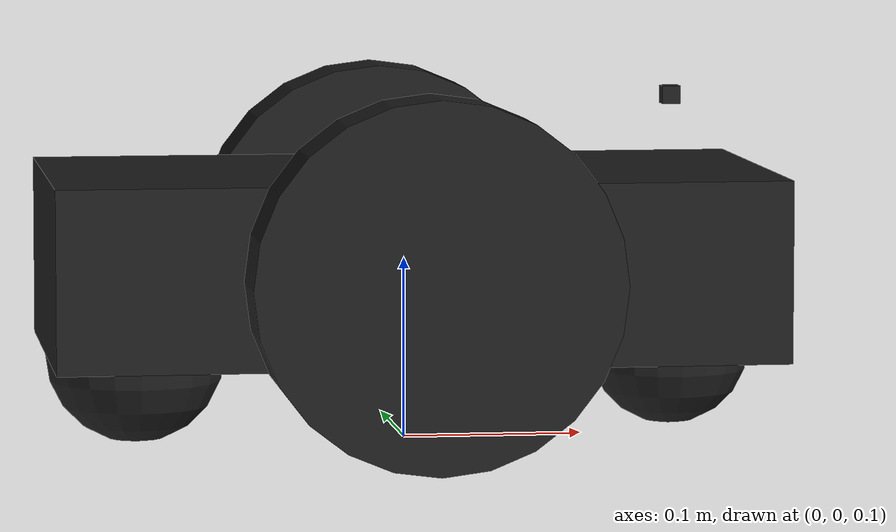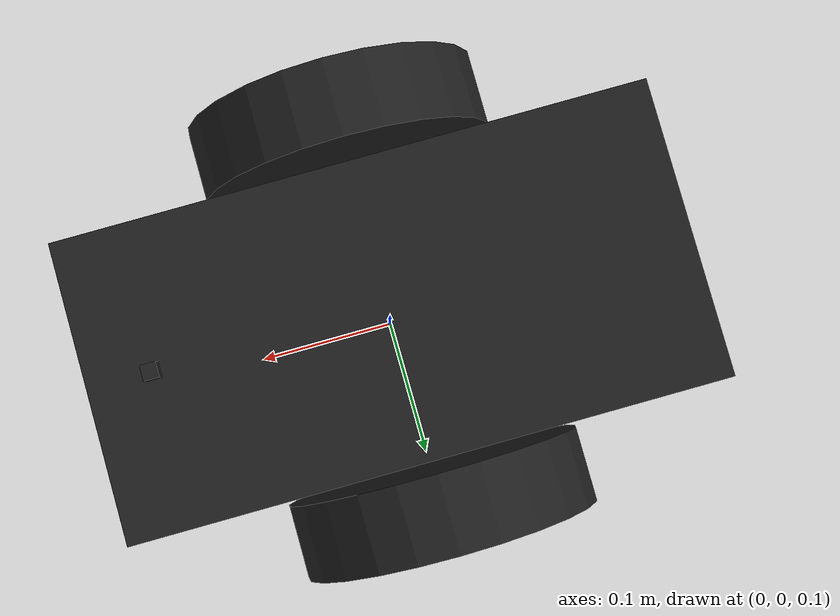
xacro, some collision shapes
<?xml version = "1.0"?>
<robot name="agv" xmlns:xacro="http://ros.org/wiki/xacro">

	<link name="base_footprint"/>
	<joint name="base_joint" type="fixed">
		<parent link="base_footprint"/>
		<child link="base_link" />
		<origin xyz="0 0 0.1" rpy="0 0 0"/>
	</joint>

	 <link name="base_link">
		 <visual>
			 <origin xyz="0 0 0.1" rpy="0 0 0"/>
			 <geometry>
				 <box size= "0.4 0.2 0.1" />
			 </geometry>
			 <material name="light_black"/>
		 </visual>
		 <collision>
			 <origin xyz="0 0 0.1" rpy="0 0 0"/>
			 <geometry>
				 <box size= "0.4 0.2 0.1" />
			 </geometry>
		 </collision>
		 <inertial>
			 <origin xyz="0 0 0.1" rpy="0 0 0"/>
			 <mass value="10"/>
			 <inertia ixx="0.01" ixy="0.0" ixz="0.0"
					  iyy="0.01" iyz="0.0"
					  izz="0.01" />
		 </inertial>
	</link>

	<link name="caster_ball_1">
		 <visual>
			 <origin xyz="0 0 0" rpy="0 0 0"/>
			 <geometry>
				 <sphere radius = "0.05"/>
			 </geometry>
			 <material name="light_black"/>
		 </visual>
		 <collision>
			 <origin xyz="0 0 0" rpy="0 0 0"/>
			 <geometry>
				 <sphere radius = "0.05"/>
			 </geometry>
		 </collision>
		 <inertial>
			 <origin xyz="0 0 0" rpy="0 0 0"/>
			 <mass value="1"/>
			 <inertia ixx="0.01" ixy="0.0" ixz="0.0"
					  iyy="0.01" iyz="0.0"
					  izz="0.01" />
		 </inertial>

	</link>

	<joint name="ball_joint_1" type="fixed">
		<parent link="base_link"/>
		<child link="caster_ball_1" />
		<origin xyz="-0.15 0 0.05"  rpy="0 0 0"/>
		<axis xyz="0 1 1"/>
	</joint>

	<link name="caster_ball_2">
		 <visual>
			 <origin xyz="0 0 0" rpy="0 0 0"/>
			 <geometry>
				 <sphere radius = "0.045"/>
			 </geometry>
			 <material name="light_black"/>
		 </visual>
		 <collision>
			 <origin xyz="0 0 0" rpy="0 0 0"/>
			 <geometry>
				 <sphere radius = "0.045"/>
			 </geometry>
		 </collision>
		 <inertial>
			 <origin xyz="0 0 0" rpy="0 0 0"/>
			 <mass value="1"/>
			 <inertia ixx="0.01" ixy="0.0" ixz="0.0"
					  iyy="0.01" iyz="0.0"
					  izz="0.01" />
		 </inertial>
	</link>

	<joint name="ball_joint_2" type="fixed">
		<parent link="base_link"/>
		<child link="caster_ball_2" />
		<origin xyz="0.15 0 0.05"  rpy="0 0 0"/>
		<axis xyz="0 1 1"/>
	</joint>

	<link name="left_wheel">
		 <visual>
			 <origin xyz="0 0 0" rpy="0 0 0"/>
			 <geometry>
				 <cylinder radius = "0.1" length ="0.05"/>
			 </geometry>
			 <material name="light_black"/>
		 </visual>
		 <collision>
			 <origin xyz="0 0 0" rpy="0 0 0"/>
			 <geometry>
				  <cylinder radius = "0.1" length ="0.00001"/>
			 </geometry>
		 </collision>
		 <inertial>
			 <origin xyz="0 0 0" rpy="0 0 0"/>
			 <mass value="1"/>
			 <inertia ixx="0.01" ixy="0.0" ixz="0.0"
					  iyy="0.01" iyz="0.0"
					  izz="0.01" />
		 </inertial>
	</link>
	<joint name="left_wheel_joint" type="continuous">
		<parent link="base_link"/>
		<child link="left_wheel" />
		<origin xyz="0 0.13 0.1" rpy="0 1.5707 1.5707"/>
		<axis xyz="0 0 1"/>
	</joint>

	<link name="right_wheel">
		 <visual>
			 <origin xyz="0 0 0" rpy="0 0 0"/>
			 <geometry>
				 <cylinder radius = "0.1" length ="0.05"/>
			 </geometry>
			 <material name="light_black"/>
		 </visual>

		 <collision>
			 <origin xyz="0 0 0" rpy="0 0 0"/>
			 <geometry>
				  <cylinder radius = "0.1" length ="0.00001"/>
			 </geometry>
		 </collision>
		 <inertial>
			 <origin xyz="0 0 0" rpy="0 0 0"/>
			 <mass value="1"/>
			 <inertia ixx="0.01" ixy="0.0" ixz="0.0"
					  iyy="0.01" iyz="0.0"
					  izz="0.01" />
		 </inertial>
	</link>
	<joint name="right_wheel_joint" type="continuous">
		<parent link="base_link"/>
		<child link="right_wheel" />
		<origin xyz="0 -0.13 0.1" rpy="0 1.5707 1.5707"/>
		<axis xyz="0 0 1"/>
	</joint>

	<link name = "laser_sensor_link">
		<visual>
			 <origin xyz="0 0 -0.03" rpy="0 0 0"/>
			 <geometry>
				 <mesh filename = "package://agv_description/meshes/hokuyo.dae" />
			 </geometry>
			 <material name="light_black"/>
		 </visual>
		 <collision>
			 <origin xyz="0 0 -0.03" rpy="0 0 0"/>
			 <geometry>
				  <box size= "0.01 0.01 0.01" />
			 </geometry>
		 </collision>
		 <inertial>
			 <origin xyz="0 0 0" rpy="0 0 0"/>
			 <mass value="0.5"/>
			 <inertia ixx="0.01" ixy="0.0" ixz="0.0"
					  iyy="0.01" iyz="0.0"
					  izz="0.01" />
		 </inertial>
	</link>
	<joint name="hokuyo_joint" type="fixed">
		<parent link="base_link"/>
		<child link="laser_sensor_link" />
		<origin xyz="0.15 0 0.22" rpy="0 0 0"/>
	</joint>

</robot>
